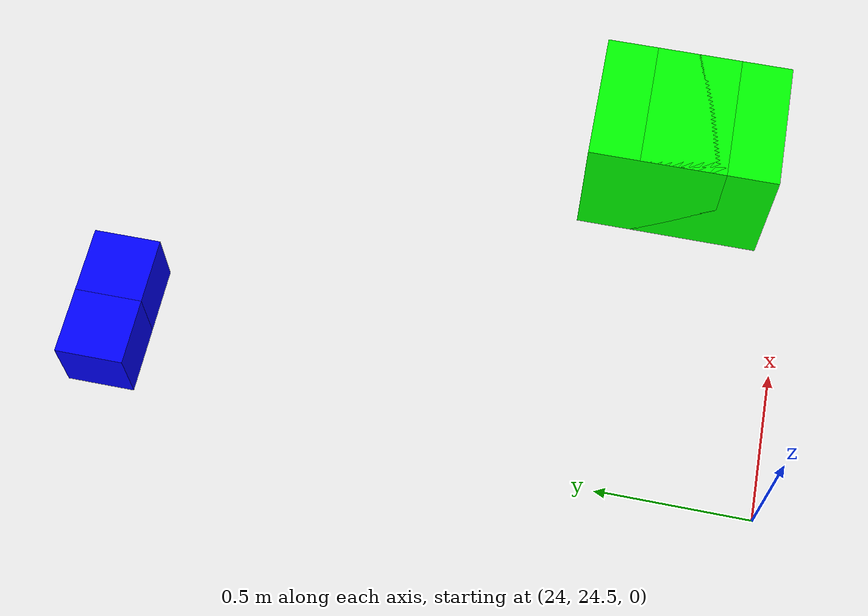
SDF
<sdf version="1.6">
 <world name="faster_than_realtime">
  <physics name="4ms" type="dart">
   <max_step_size>0.004</max_step_size>
   <real_time_factor>0.0</real_time_factor>
  </physics>
  <plugin filename="ignition-gazebo-physics-system" name="ignition::gazebo::systems::Physics"/>
  <plugin filename="ignition-gazebo-user-commands-system" name="ignition::gazebo::systems::UserCommands"/>
  <plugin filename="ignition-gazebo-sensors-system" name="ignition::gazebo::systems::Sensors">
   <render_engine>ogre2</render_engine>
  </plugin>
  <plugin filename="ignition-gazebo-scene-broadcaster-system" name="ignition::gazebo::systems::SceneBroadcaster"/>
  <plugin filename="ignition-gazebo-contact-system" name="ignition::gazebo::systems::Contact"/>
  <scene><grid>false</grid><ambient>1.0 1.0 1.0</ambient><background>0.8 0.8 0.8</background></scene>
  <light type="directional" name="sun">
   <pose>0 0 10 0 0 0</pose>
   <diffuse>0.8 0.8 0.8 1</diffuse>
   <specular>0.2 0.2 0.2 1</specular>
   <attenuation>
    <range>1000</range>
    <constant>0.9</constant>
    <linear>0.01</linear>
    <quadratic>0.001</quadratic>
   </attenuation>
   <direction>-0.5 0.1 -0.9</direction>
  </light>
  <model name="ground_platform">
   <static>true</static>
   <pose>0 0 -0.5 0 0 0</pose>
   <link name="link">
    <collision name="collision"><geometry><box><size>20 20 3</size></box></geometry></collision>
    <visual name="visual">
     <geometry><box><size>20 20 3</size></box></geometry>
     <material>
      <ambient>0.8 0.8 0.8 1</ambient>
      <diffuse>0.8 0.8 0.8 1</diffuse>
      <specular>0.8 0.8 0.8 1</specular>
     </material>
    </visual>
   </link>
  </model>
  <model name="heightmap_bounds">
   <static>true</static>
   <link name="link">
    <pose>0 0 -25 0 0 0</pose>
    <collision name="x">
     <pose>75 0 14 0 0 0</pose>
     <geometry><box><size>1 150 28</size></box></geometry>
    </collision>
    <collision name="y">
     <pose>0 75 14 0 0 0</pose>
     <geometry><box><size>150 1 28</size></box></geometry>
    </collision>
    <collision name="-x">
     <pose>-75 0 14 0 0 0</pose>
     <geometry><box><size>1 150 28</size></box></geometry>
    </collision>
    <collision name="-y">
     <pose>0 -75 14 0 0 0</pose>
     <geometry><box><size>150 1 28</size></box></geometry>
    </collision>
    <collision name="base"><geometry><box><size>5000 5000 1</size></box></geometry></collision>
   </link>
  </model>
  <model name="small_box_a">
   <pose>24 26.5 0.5 0 0 0</pose>
   <link name="link">
    <inertial>
     <mass>1</mass>
     <inertia>
      <ixx>0.0066667</ixx>
      <ixy>0.0</ixy>
      <ixz>0.0</ixz>
      <iyy>0.0066667</iyy>
      <iyz>0.0</iyz>
      <izz>0.0066667</izz>
     </inertia>
    </inertial>
    <visual name="visual">
     <geometry><box><size>0.2 0.2 0.2</size></box></geometry>
     <material><diffuse>0 0 1</diffuse></material>
    </visual>
    <collision name="collision"><geometry><box><size>0.2 0.2 0.2</size></box></geometry></collision>
   </link>
  </model>
  <model name="small_box_a_duplicate">
   <pose>24.2 26.5 0.5 0 0 0</pose>
   <link name="link">
    <inertial>
     <mass>1</mass>
     <inertia>
      <ixx>0.0066667</ixx>
      <ixy>0.0</ixy>
      <ixz>0.0</ixz>
      <iyy>0.0066667</iyy>
      <iyz>0.0</iyz>
      <izz>0.0066667</izz>
     </inertia>
    </inertial>
    <visual name="visual">
     <geometry><box><size>0.2 0.2 0.2</size></box></geometry>
     <material><diffuse>0 0 1</diffuse></material>
    </visual>
    <collision name="collision"><geometry><box><size>0.2 0.2 0.2</size></box></geometry></collision>
   </link>
  </model>
  <model name="large_box_a">
   <pose>24.9 24.85 0.65 0 0 0</pose>
   <link name="link">
    <inertial>
     <mass>10</mass>
     <inertia>
      <ixx>0.26667</ixx>
      <ixy>0.0</ixy>
      <ixz>0.0</ixz>
      <iyy>0.26667</iyy>
      <iyz>0.0</iyz>
      <izz>0.26667</izz>
     </inertia>
    </inertial>
    <visual name="visual">
     <geometry><box><size>0.4 0.4 0.4</size></box></geometry>
     <material><diffuse>0 1 0</diffuse></material>
    </visual>
    <collision name="collision"><geometry><box><size>0.4 0.4 0.4</size></box></geometry></collision>
   </link>
  </model>
  <model name="large_box_a_duplicate">
   <pose>24.9 25.0 0.65 0 0 0</pose>
   <link name="link">
    <inertial>
     <mass>10</mass>
     <inertia>
      <ixx>0.26667</ixx>
      <ixy>0.0</ixy>
      <ixz>0.0</ixz>
      <iyy>0.26667</iyy>
      <iyz>0.0</iyz>
      <izz>0.26667</izz>
     </inertia>
    </inertial>
    <visual name="visual">
     <geometry><box><size>0.4 0.4 0.4</size></box></geometry>
     <material><diffuse>0 1 0</diffuse></material>
    </visual>
    <collision name="collision"><geometry><box><size>0.4 0.4 0.4</size></box></geometry></collision>
   </link>
  </model>
  <plugin filename="libGameLogicPlugin.so" name="mbzirc::GameLogicPlugin">
   <run_duration_seconds>60</run_duration_seconds>
   <setup_duration_seconds>30</setup_duration_seconds>
   <logging><path>mbzirc_logs</path></logging>
   <geofence><center>0 0 48.46</center><size>140 140 146.92</size></geofence>
   <start_area><center>0 0 0</center><size>30 30 10</size></start_area>
   <target>
    <vessel>Vessel A</vessel>
    <small_object>small_box_a</small_object>
    <small_object>small_box_a_duplicate</small_object>
    <large_object>large_box_a</large_object>
    <large_object>large_box_a_duplicate</large_object>
   </target>
  </plugin>
  <model name="ocean_entity_detector">
   <static>true</static>
   <plugin filename="libEntityDetector.so" name="mbzirc::EntityDetector">
    <topic>/mbzirc/target_object_detector/dropped</topic>
    <pose>0 0 -20 0 0 0</pose>
    <geometry><box><size>140 140 5</size></box></geometry>
   </plugin>
  </model>
 </world>
</sdf>
